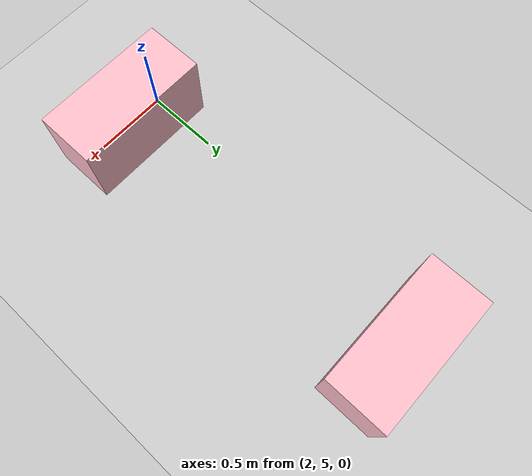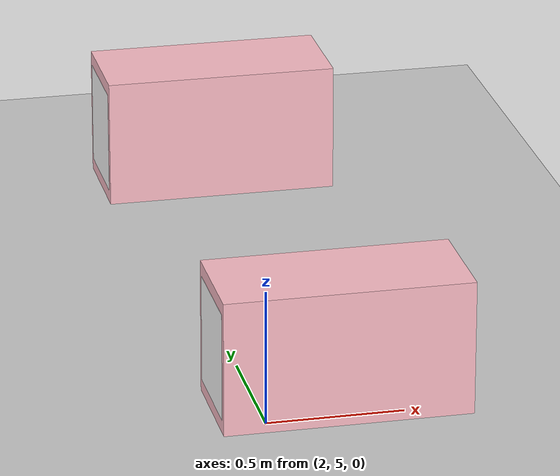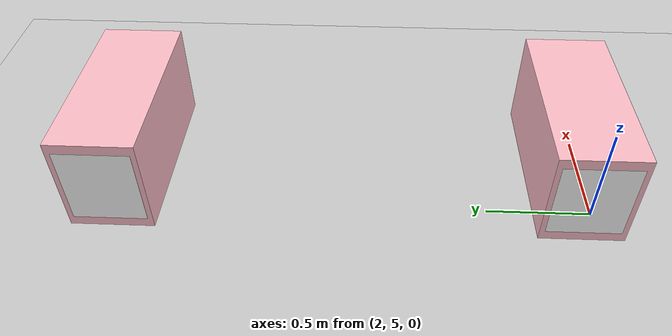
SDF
<sdf version="1.9">
 <world name="pig_pen_16units_world">
  <model name="ground_plane">
   <static>true</static>
   <link name="link">
    <collision name="collision">
     <geometry><plane><normal>0 0 1</normal><size>30 30</size></plane></geometry>
     <surface><friction><ode><mu>1.0</mu><mu2>1.0</mu2></ode></friction></surface>
    </collision>
    <visual name="visual">
     <geometry><plane><normal>0 0 1</normal><size>30 30</size></plane></geometry>
     <material>
      <ambient>0.8 0.8 0.8 1</ambient>
      <diffuse>0.8 0.8 0.8 1</diffuse>
      <specular>0.2 0.2 0.2 1</specular>
     </material>
    </visual>
   </link>
  </model>
  <include><uri>model://farm_pig</uri><name>pig13_a</name><pose>2.275 5.085 0.27 0 0 3.1416</pose></include>
  <include><uri>model://farm_pig</uri><name>pig16_b</name><pose>2.275 7.275 0.27 0 0 3.1416</pose></include>
 </world>
</sdf>
